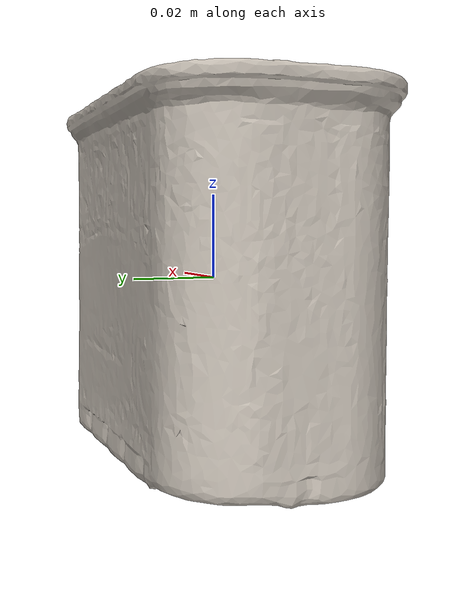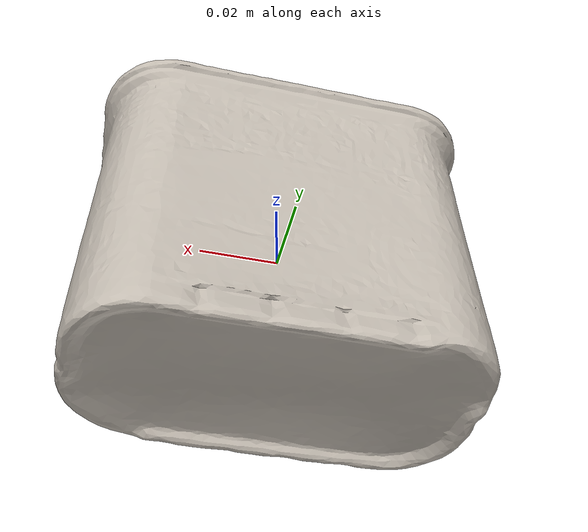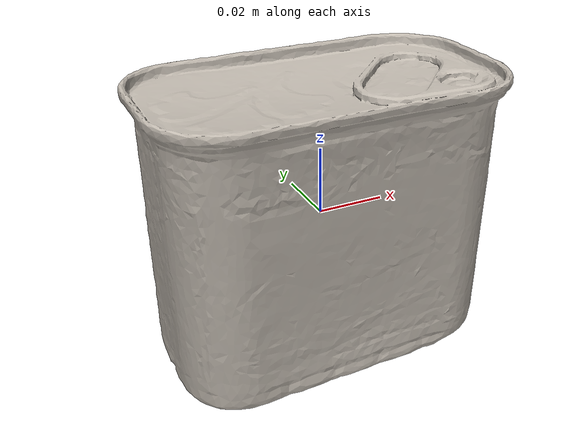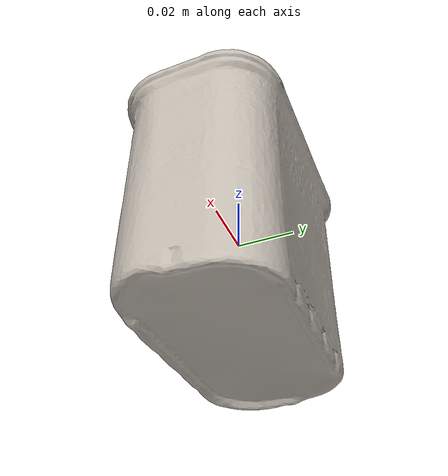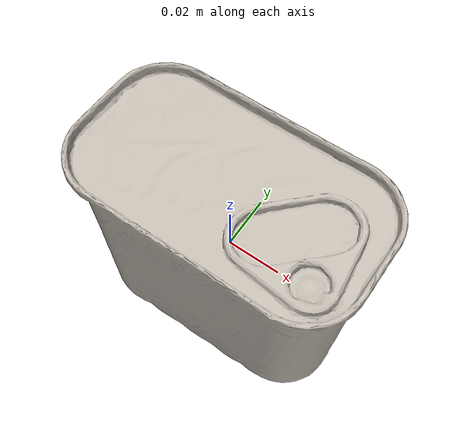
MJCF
<mujoco model="potted_meat_can">
  <default>
    <default class="visual">
      <geom group="1" type="mesh" contype="0" conaffinity="0"/>
    </default>
    <default class="collision">
      <geom group="0" type="mesh"/>
    </default>
  </default>
  <asset>
    <texture type="2d" name="potted_meat_can" file="potted_meat_can.png"/>
    <material name="potted_meat_can" texture="potted_meat_can" specular="0.4000000000000001" shininess="0.001"/>
    <mesh name="potted_meat_can" file="potted_meat_can.obj"/>
  </asset>
  <worldbody>
    <body>
    <body name="object">
      <geom material="potted_meat_can" mesh="potted_meat_can" class="visual"/>
      <geom mesh="potted_meat_can" class="collision"/>
    </body>
      <site rgba="0 0 0 0" size="0.005" pos="0 0 -0.04" name="bottom_site" />
      <site rgba="0 0 0 0" size="0.005" pos="0 0 0.04" name="top_site" />
      <site rgba="0 0 0 0" size="0.005" pos="0.005 0.005 0" name="horizontal_radius_site" />
   </body>
  </worldbody>
</mujoco>
